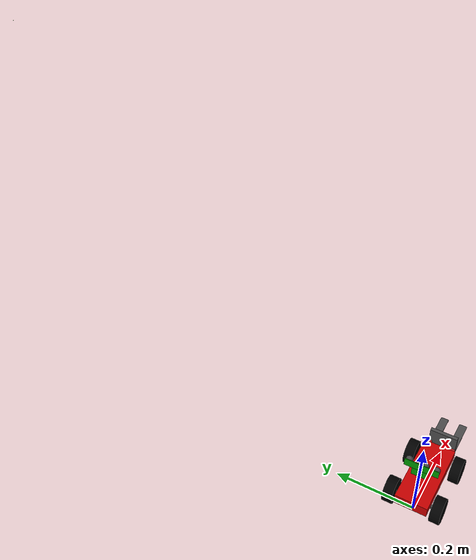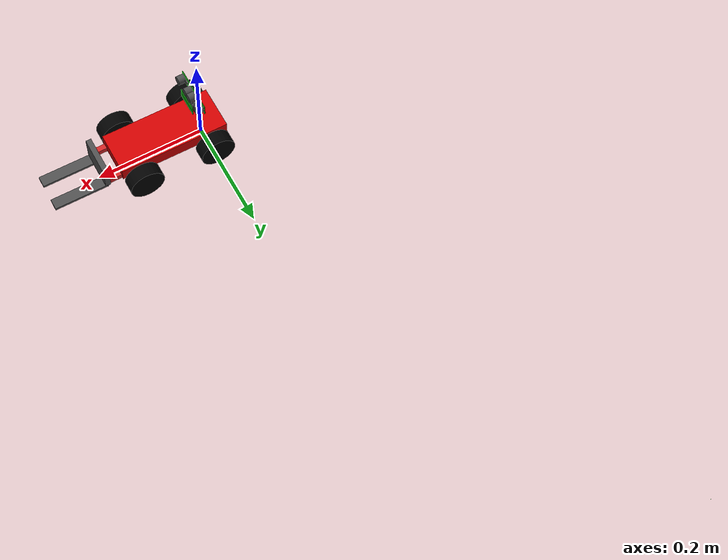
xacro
<?xml version="1.0"?>
<robot xmlns:xacro="http://www.ros.org/wiki/xacro" name="fitzroy">
	<!-- roslaunch urdf_tutorial xacrodisplay.launch model:='$(find fitzroy_description)/urdf/tractorcustom.urdf.xacro' gui:='true'-->

  <xacro:include filename="$(find fitzroy_description)/urdf/fitzroy_common.urdf.xacro"/>

  <!-- The fake GPS needs an origin, it's an arg so it can be changed based on the world used. -->
  <!-- This is the origin of the gazebo world, NOT the place the robot is first dropped into. -->
  <xacro:arg name="latitude" default="0.0" />
  <xacro:arg name="longitude" default="0.0" />

  <xacro:arg name="use_velodyne" default="false" />

	<!-- Front Loader Properties-->
	<xacro:property name="framewidth" value="0.07" />
	<xacro:property name="frameheight" value="0.05" />
	<xacro:property name="thickness" value="0.01" />
	<xacro:property name="armsize" value="0.01" />
	<xacro:property name="armlen" value="0.10" />
	<xacro:property name="forkwidth" value="0.02" />
	<xacro:property name="forkheight" value="0.005" />
	<xacro:property name="forklen" value="0.1" />
	<xacro:property name="forksep" value="0.05" />
	<xacro:property name="basedepth" value="0.04" />
	<xacro:property name="liftmin" value="-0.5" />
	<xacro:property name="liftmax" value="0.5" />
	<xacro:property name="arm_x" value="0.028" />
	<xacro:property name="arm_z" value="-0.010" />
	<xacro:property name="frame_x" value="0.010" />
	<xacro:property name="frame_z" value="0.010" />

	<!-- chasis properties -->
	<xacro:property name="chasiswidth" value="0.080" />
	<xacro:property name="chasisheight" value="0.025" />
	<xacro:property name="chasislength" value="0.202" />
	<xacro:property name="chasismass" value="0.25"/>
	<!-- Backrack on tractor that Reed made-->
	<xacro:property name="rackheight" value="0.09" />
	<xacro:property name="rackback" value="-0.015" />

	<!-- Wheel properties-->
	<xacro:property name="rearwheeldia" value="0.064" />
	<xacro:property name="rearwheelwidth" value="0.025" />
	<xacro:property name="frontwheeldia" value="0.064" />
	<xacro:property name="frontwheelwidth" value="0.025" />
	<xacro:property name="wheelmass" value=".050"/>
	<xacro:property name="rearwheelsep" value="0.117"/>
	<xacro:property name="frontwheelsep" value="0.117"/>
	<xacro:property name="wheelbase" value="0.137"/>
	<xacro:property name="axlesize" value="0.007"/>
	<xacro:property name="turnmin" value="${-pi/4}" />
	<xacro:property name="turnmax" value="${pi/4}" />

	<!-- Wheel Friction -->
	<xacro:property name="wheelfriction1" value="2.0"/>
	<xacro:property name="wheelfriction2" value="2.0"/>
	<xacro:property name="wheelcontactstiffness" value="1000000.0"/>
	<xacro:property name="wheelcontactdamping" value="1.0"/>

	<!-- Wheel offsets-->
	<xacro:property name="front_shock_offset" value="0"/>
  <xacro:property name="rear_shock_offset" value="0"/>

	<!-- Motor properties (steer) -->
	<xacro:property name="steer_eff_limit" value="10000.0"/>
  <xacro:property name="steer_vel_limit" value="10.0"/>
	<xacro:property name="propel_eff_limit" value="100000.0"/>
  <xacro:property name="propel_vel_limit" value="50.0"/>

	<!-- base footprint to make everything work better -->
  <link name="base_footprint">
  </link>

	<!-- base link for whole car ${wheelbase/2} -->
  <link name="base_link">
  </link>
	<joint name="base_footprint_to_base_link" type="fixed">
    <parent link="base_footprint"/>
    <child link="base_link"/>
    <origin xyz="0 0 ${rearwheeldia/2} "/>
  </joint>

	<!-- main chasis -->
	<xacro:cube_plastic
      name="chassis"
      dimx="${chasislength}"
      dimy="${chasiswidth}"
      dimz="${chasisheight}" />
	<joint name="base_link_to_chasis" type="fixed">
    <parent link="base_link"/>
    <child link="chassis"/>
    <origin xyz="${wheelbase/2} 0 ${rear_shock_offset + chasisheight/2}"/>
  </joint>

	<!-- rear axle -->
	<xacro:cube_aluminum
      name="rear_axle"
      dimx="${axlesize}"
      dimy="${rearwheelsep-rearwheelwidth}"
      dimz="${axlesize}" />
	<joint name="base_link_to_rear_axle" type="fixed">
    <parent link="base_link"/>
    <child link="rear_axle"/>
    <origin xyz="0 0 0"/>
  </joint>

	<!-- right rear wheel -->
  <link name="right_rear_wheel">
    <visual>
      <geometry>
        <cylinder length="${rearwheelwidth}" radius="${rearwheeldia/2}"/>
      </geometry>
			<origin rpy="${pi/2} 0 0" xyz="0 0 0 "/>
			<material name="black"/>
    </visual>
		<collision>
			<geometry>
				<cylinder length="${rearwheelwidth}" radius="${rearwheeldia/2}"/>
			</geometry>
			<origin rpy="${pi/2} 0 0" xyz="0 0 0 "/>
		</collision>
		<xacro:cylinder_inertial
          rad="${rearwheeldia / 2}"
					height="${rearwheelwidth}" mass="${wheelmass}"/>
  </link>
	<gazebo reference="right_rear_wheel">
		<mu1 value="${wheelfriction1}"/>
		<mu2 value="${wheelfriction2}"/>
		<kp value="${wheelcontactstiffness}" />
		<kd value="${wheelcontactdamping}" />
		<material>Gazebo/FlatBlack</material>
	</gazebo>
	<joint name="rear_axle_to_right_wheel" type="continuous">
		<axis xyz="0 1 0"/>
    <parent link="rear_axle"/>
    <child link="right_rear_wheel"/>
    <origin xyz="0 ${-rearwheelsep/2} 0"/>
		<limit effort="${propel_eff_limit}" velocity="${propel_vel_limit}"/>
  </joint>

	<!-- left rear wheel -->
  <link name="left_rear_wheel">
    <visual>
      <geometry>
        <cylinder length="${rearwheelwidth}" radius="${rearwheeldia/2}"/>
      </geometry>
			<origin rpy="${pi/2} 0 0" xyz="0 0 0 "/>
			<material name="black"/>
    </visual>
		<collision>
			<geometry>
				<cylinder length="${rearwheelwidth}" radius="${rearwheeldia/2}"/>
			</geometry>
			<origin rpy="${pi/2} 0 0" xyz="0 0 0 "/>
		</collision>
		<xacro:cylinder_inertial
          rad="${rearwheeldia / 2}"
					height="${rearwheelwidth}" mass="${wheelmass}"/>
  </link>
	<gazebo reference="left_rear_wheel">
		<mu1 value="${wheelfriction1}"/>
		<mu2 value="${wheelfriction2}"/>
		<kp value="${wheelcontactstiffness}" />
		<kd value="${wheelcontactdamping}" />
		<material>Gazebo/FlatBlack</material>
	</gazebo>
	<joint name="rear_axle_to_left_wheel" type="continuous">
		<axis xyz="0 1 0"/>
    <parent link="rear_axle"/>
    <child link="left_rear_wheel"/>
    <origin xyz="0 ${rearwheelsep/2} 0"/>
		<limit effort="${propel_eff_limit}" velocity="${propel_vel_limit}"/>
  </joint>

	<!-- front axle right -->
	<xacro:cube_aluminum
      name="front_axle_right"
      dimx="${axlesize}"
      dimy="${axlesize}"
      dimz="${axlesize}" />
	<joint name="base_link_to_front_axle_right" type="revolute">
		<axis xyz="0 0 1"/>
    <limit effort="${steer_eff_limit}" lower="${turnmin}" upper="${turnmax}" velocity="${steer_vel_limit}"/>
    <parent link="chassis"/>
    <child link="front_axle_right"/>
    <origin xyz="${wheelbase/2} ${-frontwheelsep/2} ${-chasisheight/2 - front_shock_offset} "/>
  </joint>

	<!-- front axle left -->
	<xacro:cube_aluminum
      name="front_axle_left"
      dimx="${axlesize}"
      dimy="${axlesize}"
      dimz="${axlesize}" />
	<joint name="base_link_to_front_axle_left" type="revolute">
		<axis xyz="0 0 1"/>
    <limit effort="${steer_eff_limit}" lower="${turnmin}" upper="${turnmax}" velocity="${steer_vel_limit}"/>
    <parent link="chassis"/>
    <child link="front_axle_left"/>
    <origin xyz="${wheelbase/2} ${frontwheelsep/2} ${-chasisheight/2 - front_shock_offset} "/>
  </joint>

	<!-- right front wheel -->
  <link name="right_front_wheel">
    <visual>
      <geometry>
        <cylinder length="${frontwheelwidth}" radius="${frontwheeldia/2}"/>
      </geometry>
			<origin rpy="${pi/2} 0 0" xyz="0 0 0 "/>
			<material name="black"/>
    </visual>
		<collision>
			<geometry>
				<cylinder length="${frontwheelwidth}" radius="${frontwheeldia/2}"/>
			</geometry>
			<origin rpy="${pi/2} 0 0" xyz="0 0 0 "/>
		</collision>
		<xacro:cylinder_inertial
          rad="${frontwheeldia / 2}"
					height="${frontwheelwidth}" mass="${wheelmass}"/>
  </link>
	<gazebo reference="right_front_wheel">
		<mu1 value="${wheelfriction1}"/>
		<mu2 value="${wheelfriction2}"/>
		<kp value="${wheelcontactstiffness}" />
		<kd value="${wheelcontactdamping}" />
		<material>Gazebo/FlatBlack</material>
	</gazebo>
	<joint name="front_axle_to_right_wheel" type="continuous">
		<axis xyz="0 1 0"/>
    <parent link="front_axle_right"/>
    <child link="right_front_wheel"/>
    <origin xyz="0 0 0"/>
		<limit effort="${propel_eff_limit}" velocity="${propel_vel_limit}"/>
  </joint>

	<!-- left front wheel -->
  <link name="left_front_wheel">
    <visual>
      <geometry>
       <cylinder length="${frontwheelwidth}" radius="${frontwheeldia/2}"/>
      </geometry>
			<origin rpy="${pi/2} 0 0" xyz="0 0 0 "/>
			<material name="black"/>
    </visual>
		<collision>
			<geometry>
				<cylinder length="${frontwheelwidth}" radius="${frontwheeldia/2}"/>
			</geometry>
			<origin rpy="${pi/2} 0 0" xyz="0 0 0 "/>
		</collision>
		<xacro:cylinder_inertial
          rad="${frontwheeldia / 2}"
					height="${frontwheelwidth}" mass="${wheelmass}"/>
  </link>
	<gazebo reference="left_front_wheel">
		<mu1 value="${wheelfriction1}"/>
		<mu2 value="${wheelfriction2}"/>
		<kp value="${wheelcontactstiffness}" />
		<kd value="${wheelcontactdamping}" />
		<material>Gazebo/FlatBlack</material>
	</gazebo>
	<joint name="front_axle_to_left_wheel" type="continuous">
		<axis xyz="0 1 0"/>
    <parent link="front_axle_left"/>
    <child link="left_front_wheel"/>
    <origin xyz="0 0 0"/>
		<limit effort="${propel_eff_limit}" velocity="${propel_vel_limit}"/>
  </joint>

	<!-- START OF LOADER ARM STUFF -->
	<!-- dummy link to hold loader -->

	<!-- left arm -->
  <link name="left_arm">
    <visual>
      <geometry>
        <box size="${armlen} ${armsize} ${armsize}"/>
      </geometry>
      <origin rpy="0 0 0" xyz="${armlen/2 - thickness/2} 0 0"/>
    </visual>
		<collision>
			<geometry>
        <box size="${armlen} ${armsize} ${armsize}"/>
			</geometry>
      <origin rpy="0 0 0" xyz="${armlen/2 - thickness/2} 0 0"/>
		</collision>
		<xacro:default_inertial mass="1"/>
  </link>
	<gazebo reference="left_arm">
		<material>Gazebo/Red</material>
	</gazebo>

	<joint name="back_to_left_arm" type="fixed">
    <parent link="chassis"/>
    <child link="left_arm"/>
    <origin xyz="${arm_x} ${framewidth/2 - armsize/2} ${arm_z}"/>
  </joint>

	<!-- right arm -->
  <link name="right_arm">
    <visual>
      <geometry>
        <box size="${armlen} ${armsize} ${armsize}"/>
      </geometry>
      <origin rpy="0 0 0" xyz="${armlen/2 - thickness/2} 0 0"/>
    </visual>
		<collision>
			<geometry>
        <box size="${armlen} ${armsize} ${armsize}"/>
			</geometry>
      <origin rpy="0 0 0" xyz="${armlen/2 - thickness/2} 0 0"/>
		</collision>
		<xacro:default_inertial mass="1"/>
  </link>
	<gazebo reference="right_arm">
		<material>Gazebo/Red</material>
	</gazebo>

	<joint name="back_to_right_arm" type="fixed">
    <parent link="chassis"/>
    <child link="right_arm"/>
    <origin xyz="${arm_x} ${-framewidth/2 + armsize/2} ${arm_z}"/>
    <mimic  joint="back_to_left_arm" multiplier="1" offset="0"/>
  </joint>

	<!-- START OF FORK ASSEMBLY -->
	<!-- We use separate links for each part to have accurate physics properties -->

	<!-- fork assembly -->
  <link name="fork_assembly">
  </link>

	<!-- lift front wall with arm -->
	<joint name="left_arm_to_fork_assembly" type="fixed">
    <parent link="left_arm"/>
    <child link="fork_assembly"/>
    <origin xyz="${armlen-thickness} ${-framewidth/2 + armsize/2} 0"/>
  </joint>

	<!-- backstop -->
	<xacro:cube_aluminum
      name="fork_backstop"
      dimx="${frameheight}"
      dimy="${framewidth}"
      dimz="${thickness}" />
	<joint name="fork_assembly_to_fork_backstop" type="fixed">
    <parent link="fork_assembly"/>
    <child link="fork_backstop"/>
		<origin rpy="0 ${pi/2} 0" xyz="${frame_x} 0 ${chasisheight-frame_z} "/>
  </joint>
	<!-- left fork -->
	<xacro:cube_aluminum
      name="left_fork"
      dimx="${forkheight}"
      dimy="${forkwidth}"
      dimz="${forklen}" />
	<joint name="fork_assembly_to_left_fork" type="fixed">
    <parent link="fork_assembly"/>
    <child link="left_fork"/>
    <origin rpy="0 ${pi/2} 0" xyz="${frame_x+forklen/2} ${ forksep/2} ${chasisheight-frame_z-frameheight/2} "/>
  </joint>
	<!-- right fork -->
	<xacro:cube_aluminum
      name="right_fork"
      dimx="${forkheight}"
      dimy="${forkwidth}"
      dimz="${forklen}" />
	<joint name="fork_assembly_to_right_fork" type="fixed">
    <parent link="fork_assembly"/>
    <child link="right_fork"/>
    <origin rpy="0 ${pi/2} 0" xyz="${frame_x+forklen/2} ${-forksep/2} ${chasisheight-frame_z-frameheight/2} "/>
  </joint>

	<!-- START OF THE TRANSMISSIONS STUFF (NECCESARY TO USE MOTOR CONTROL IN GAZEBO) -->
	<!-- Steering Transmissions -->
	<transmission name="right_steer_trans">
    <type>transmission_interface/SimpleTransmission</type>
    <actuator name="right_steer_motor">
      <mechanicalReduction>1</mechanicalReduction>
    </actuator>
    <joint name="base_link_to_front_axle_right">
      <hardwareInterface>hardware_interface/EffortJointInterface</hardwareInterface>
    </joint>
  </transmission>
	<transmission name="left_steer_trans">
    <type>transmission_interface/SimpleTransmission</type>
    <actuator name="left_steer_motor">
      <mechanicalReduction>1</mechanicalReduction>
    </actuator>
    <joint name="base_link_to_front_axle_left">
      <hardwareInterface>hardware_interface/EffortJointInterface</hardwareInterface>
    </joint>
  </transmission>

	<!-- Wheel transmissions -->
	<transmission name="right_front_wheel_trans">
    <type>transmission_interface/SimpleTransmission</type>
    <actuator name="right_front_wheel_motor">
      <mechanicalReduction>1</mechanicalReduction>
    </actuator>
    <joint name="front_axle_to_right_wheel">
      <hardwareInterface>hardware_interface/EffortJointInterface</hardwareInterface>
    </joint>
  </transmission>
	<transmission name="right_rear_wheel_trans">
    <type>transmission_interface/SimpleTransmission</type>
    <actuator name="right_rear_wheel_motor">
      <mechanicalReduction>1</mechanicalReduction>
    </actuator>
    <joint name="rear_axle_to_right_wheel">
      <hardwareInterface>hardware_interface/EffortJointInterface</hardwareInterface>
    </joint>
  </transmission>
	<transmission name="left_front_wheel_trans">
    <type>transmission_interface/SimpleTransmission</type>
    <actuator name="left_front_wheel_motor">
      <mechanicalReduction>1</mechanicalReduction>
    </actuator>
    <joint name="front_axle_to_left_wheel">
      <hardwareInterface>hardware_interface/EffortJointInterface</hardwareInterface>
    </joint>
  </transmission>
	<transmission name="left_rear_wheel_trans">
    <type>transmission_interface/SimpleTransmission</type>
    <actuator name="left_rear_wheel_motor">
      <mechanicalReduction>1</mechanicalReduction>
    </actuator>
    <joint name="rear_axle_to_left_wheel">
      <hardwareInterface>hardware_interface/EffortJointInterface</hardwareInterface>
    </joint>
  </transmission>

	<!-- Specify Plugin for Gazebo-->
	<gazebo>
    <plugin name="gazebo_ros_control" filename="libgazebo_ros_control.so">
      <robotNamespace>/</robotNamespace>
      <robotSimType>gazebo_ros_control/DefaultRobotHWSim</robotSimType>
      <legacyModeNS>true</legacyModeNS>
    </plugin>

	<!-- Provide pose as an odom topic -->
    <plugin name="p3d_base_controller" filename="libgazebo_ros_p3d.so">
      <alwaysOn>true</alwaysOn>
      <updateRate>50.0</updateRate>
      <bodyName>base_link</bodyName>
      <topicName>/ground_truth</topicName>
      <gaussianNoise>0.0</gaussianNoise>
      <frameName>world</frameName>
      <xyzOffsets>0 0 0</xyzOffsets>
      <rpyOffsets>0 0 0</rpyOffsets>
    </plugin>

  </gazebo>

	<!-- Setup a fake gps sensor -->
	<joint name="gps_joint" type="fixed">
    <parent link="base_link"/>
    <child link="gps_link"/>
  </joint>
	<link name="gps_link">
	</link>
	<gazebo>
		<plugin name="novatel_gps_sim" filename="libnorthstar_gazebo_ros_gps.so">
		  <alwaysOn>1</alwaysOn>
		  <updateRate>10.0</updateRate>
		  <bodyName>gps_link</bodyName>
			<frameId>gps_link</frameId> <!-- 'frameId' not 'frameName'-->
		  <topicName>gps/fix</topicName>
		  <velocityTopicName>gps/fix_velocity</velocityTopicName>
		  <drift>0 0 0</drift>
		  <gaussianNoise>0.04 0.04 0.1</gaussianNoise>
		  <velocityDrift>0 0 0</velocityDrift>
		  <velocityGaussianNoise>0.1 0.1 0.1</velocityGaussianNoise>
			<!-- Here we set the initial GPS location (Nordborg, DN)  default is in hamburg, germany-->
			<referenceLatitude>$(arg latitude)</referenceLatitude>
			<referenceLongitude>$(arg longitude)</referenceLongitude>
		</plugin>
	</gazebo>

	<!-- Setup a fake IMU sensor -->
  <joint name="imu_joint" type="fixed">
    <parent link="base_link"/>
    <child link="fitzroy_imu"/>
  </joint>
	<link name="fitzroy_imu">
	</link>
	<gazebo>
		<!-- Old IMU plugin messes with frame_id: dont use libgazebo_ros_imu.so-->
    <plugin name="imu_plugin" filename="libhector_gazebo_ros_imu.so">
        <alwaysOn>true</alwaysOn>
        <bodyName>fitzroy_imu</bodyName>
				<frameId>fitzroy_imu</frameId> <!-- 'frameId' not 'frameName'-->
        <topicName>imu/data</topicName>
        <serviceName>imu/service</serviceName>
        <gaussianNoise>0.001</gaussianNoise>
        <updateRate>50.0</updateRate>
    </plugin>
	</gazebo>

	<!-- Camera -->
  <xacro:include filename="$(find fitzroy_description)/urdf/picam.urdf.xacro"/>
  <picam parent="chassis" name="camera">
    <origin xyz="${-(wheelbase/2 + rackback)} 0 ${rackheight}" rpy="0 0 0"/>
  </picam>

	<!-- Ultrasonic -->
  <xacro:include filename="$(find fitzroy_description)/urdf/ultrasonic_sensor.urdf.xacro"/>
  <ultrasonic_sensor parent="chassis" name="fitzroy_us1">
    <origin xyz="${-(wheelbase/2 + rackback)} 0.020 ${rackheight}" rpy="0 0 0"/>
  </ultrasonic_sensor>
	<!-- Ultrasonic -->
  <xacro:include filename="$(find fitzroy_description)/urdf/ultrasonic_sensor.urdf.xacro"/>
  <ultrasonic_sensor parent="chassis" name="fitzroy_us2">
    <origin xyz="${-(wheelbase/2 + rackback)} -0.020 ${rackheight}" rpy="0 0 0"/>
  </ultrasonic_sensor>
	<!-- TOF Rev -->
  <xacro:include filename="$(find fitzroy_description)/urdf/ultrasonic_sensor.urdf.xacro"/>
  <ultrasonic_sensor parent="chassis" name="fitzroy_tof1">
    <origin xyz="${-(wheelbase/2 + rackback)} 0 ${rackheight - 0.02}" rpy="0 0 ${pi}"/>
  </ultrasonic_sensor>
	<!-- TOF Fwd -->
  <xacro:include filename="$(find fitzroy_description)/urdf/ultrasonic_sensor.urdf.xacro"/>
  <ultrasonic_sensor parent="chassis" name="fitzroy_tof2">
    <origin xyz="${-(wheelbase/2 + rackback)} 0 ${rackheight - 0.02}" rpy="0 0 0"/>
  </ultrasonic_sensor>

</robot>

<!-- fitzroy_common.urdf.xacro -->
<robot xmlns:xacro="http://www.ros.org/wiki/xacro" name="fitzroy_common">
	<!-- roslaunch urdf_tutorial xacrodisplay.launch model:='$(find fitzroy_description)/urdf/tractorcustom.urdf.xacro' gui:='true'-->

	<!-- Each link is a physical element, the visual tag is required -->
	<!-- Each link also has a collision and inertial element which define interactions -->
	<xacro:property name="pi" value="3.14159265358" />

	<!-- default initializer for inertia -->
	<xacro:macro name="default_inertial" params="mass">
		<inertial>
      			<mass value="${mass}" />
		        <inertia ixx="1.0" ixy="0.0" ixz="0.0"
			         iyy="1.0" iyz="0.0"
			         izz="1.0" />
		</inertial>
	</xacro:macro>

	<!-- macro for computing the inertia tensor for cubes-->
	<!-- https://en.wikipedia.org/wiki/List_of_moments_of_inertia -->
	<xacro:macro name="cube_inertial"
               params="dimx dimy dimz mass">
    <inertial>
      <mass value="${mass}"/>
      <inertia ixx="${(1/12)*mass*(dimy*dimy + dimz*dimz)}"
               ixy="0" ixz="0"
               iyy="${(1/12)*mass*(dimx*dimx + dimz*dimz)}"
               iyz="0"
               izz="${(1/12)*mass*(dimx*dimx + dimy*dimy)}"/>
    </inertial>
  </xacro:macro>

	<!-- macro for computing inertia tensor for a cylinder-->
	<!-- http://scienceworld.wolfram.com/physics/MomentofInertiaCylinder.html -->
	<xacro:macro name="cylinder_inertial"
               params="rad height mass">
    <inertial>
      <mass value="${mass}"/>
      <inertia ixx="${(1/12)*mass*(height*height) + (1 / 4)*mass*(rad*rad) }"
               ixy="0" ixz="0"
               iyy="${(1/2)* mass * (rad*rad)}"
               iyz="0"
               izz="${(1/12)*mass*(height*height) + (1 / 4)*mass*(rad*rad) }"/>
    </inertial>
  </xacro:macro>

	<!-- Setup some colors -->
	<!-- List of materials: http://wiki.ros.org/simulator_gazebo/Tutorials/ListOfMaterials-->
	<material name="blue">
		<color rgba="0 0 0.8 1"/>
	</material>
	<material name="red">
		<color rgba="0.8 0 0 1"/>
	</material>
	<material name="hideaxle">
		<color rgba="1 1 1 1"/>
	</material>
	<material name="white">
		<color rgba="1 1 1 1"/>
	</material>
	<material name="black">
		<color rgba="0 0 0 1"/>
	</material>
	<material name="grey">
		<color rgba="0.3 0.3 0.3 1"/>
	</material>
	<material name="green">
		<color rgba="0 0.6 0 1"/>
	</material>

	<!-- macro for creating an aluminum cube -->
	<xacro:macro name="cube_aluminum"
               params="name dimx dimy dimz density:=2700">
    <xacro:property name="mass" value="${density*dimx*dimy*dimz}"/>
    <link name="${name}">
      <visual>
        <geometry>
          <box size="${dimx} ${dimy} ${dimz}"/>
        </geometry>
			  <origin rpy="0 0 0" xyz="0 0 0"/>
			  <material name="grey"/>
      </visual>
		  <collision>
        <geometry>
          <box size="${dimx} ${dimy} ${dimz}"/>
        </geometry>
			  <origin rpy="0 0 0" xyz="0 0 0"/>
		  </collision>
      <cube_inertial dimx="${dimx}" dimy="${dimy}" dimz="${dimz}" mass="${mass}" />
    </link>
	  <gazebo reference="${name}">
		  <material>Gazebo/Grey</material>
	  </gazebo>
  </xacro:macro>

	<!-- macro for creating a plastic cube -->
	<xacro:macro name="cube_plastic"
               params="name dimx dimy dimz density:=1000">
    <xacro:property name="mass" value="${density*dimx*dimy*dimz}"/>
    <link name="${name}">
      <visual>
        <geometry>
          <box size="${dimx} ${dimy} ${dimz}"/>
        </geometry>
			  <origin rpy="0 0 0" xyz="0 0 0"/>
			  <material name="red"/>
      </visual>
		  <collision>
        <geometry>
          <box size="${dimx} ${dimy} ${dimz}"/>
        </geometry>
			  <origin rpy="0 0 0" xyz="0 0 0"/>
		  </collision>
      <cube_inertial dimx="${dimx}" dimy="${dimy}" dimz="${dimz}" mass="${mass}" />
    </link>
	  <gazebo reference="${name}">
		  <material>Gazebo/Red</material>
	  </gazebo>
  </xacro:macro>

</robot>

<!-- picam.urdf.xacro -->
<robot xmlns:xacro="http://www.ros.org/wiki/xacro" name="picam">
  <xacro:property name="M_PI" value="3.1415926535897931" />
  <xacro:property name="picam_width" value="0.025" />
  <xacro:property name="picam_height" value="0.024" />
  <xacro:property name="picam_thickness" value="0.009" />
  <xacro:property name="picam_hfov" value="${53.50*M_PI/180}" />

	<!-- Simple Raspberry Pi Camera -->
  <xacro:macro name="picam" params="*origin parent:=base_link name:=camera ">

	<joint name="${name}_joint" type="fixed">
    <xacro:insert_block name="origin" />
    <parent link="${parent}"/>
    <child link="${name}_link"/>
  </joint>
	<link name="${name}_link">
    <collision>
      <geometry>
    	  <box size="${picam_thickness} ${picam_width} ${picam_height} "/>
      </geometry>
    </collision>
    <visual>
      <geometry>
        <mesh filename="package://fitzroy_description/meshes/picam.dae" scale="0.0254 0.0254 0.0254"/>
      </geometry>
      <!-- These offsets are specific to the dae file, and were found experimentally ${-1.128+0.01025} ${-0.874-0.00126} -0.003 -->
      <origin xyz="-0.003 1.11775 0.87526" rpy="${-M_PI/2} 0 ${-M_PI/2}"/>
    </visual>
    <inertial>
      <mass value="1e-5" />
      <origin xyz="0 0 0" rpy="0 0 0"/>
      <inertia ixx="1e-6" ixy="0" ixz="0" iyy="1e-6" iyz="0" izz="1e-6" />
    </inertial>
  </link>
  <joint name="${name}_optical_joint" type="fixed">
    <!-- these values have to be these values otherwise the gazebo camera
        image won't be aligned properly with the frame it is supposedly
        originating from -->
    <origin xyz="0 0 0" rpy="${-M_PI/2} 0 ${-M_PI/2}"/>
    <parent link="${name}_link"/>
    <child link="${name}_link_optical"/>
  </joint>

  <link name="${name}_link_optical">
  </link>
  <gazebo reference="${name}_link">
    <sensor type="camera" name="${name}">
      <update_rate>30.0</update_rate>
      <camera name="head">
        <horizontal_fov>${picam_hfov}</horizontal_fov>
        <image>
          <width>640</width>
          <height>480</height>
          <format>R8G8B8</format>
        </image>
        <clip>
          <near>0.02</near>
          <far>1000</far>
        </clip>
        <noise>
          <type>gaussian</type>
          <!-- Noise is sampled independently per pixel on each frame.
               That pixel's noise value is added to each of its color
               channels, which at that point lie in the range [0,1]. -->
          <mean>0.0</mean>
          <stddev>0.007</stddev>
        </noise>
      </camera>
      <plugin name="camera_controller" filename="libgazebo_ros_camera.so">
        <alwaysOn>true</alwaysOn>
        <updateRate>0.0</updateRate>
        <cameraName>${name}</cameraName>
        <imageTopicName>image_raw</imageTopicName>
        <cameraInfoTopicName>camera_info</cameraInfoTopicName>
        <frameName>${name}_link_optical</frameName>
        <hackBaseline>0.07</hackBaseline>
        <distortionK1>0.0</distortionK1>
        <distortionK2>0.0</distortionK2>
        <distortionK3>0.0</distortionK3>
        <distortionT1>0.0</distortionT1>
        <distortionT2>0.0</distortionT2>
      </plugin>
    </sensor>
  </gazebo>

  </xacro:macro>
</robot>

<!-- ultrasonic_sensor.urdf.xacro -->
<robot xmlns:xacro="http://www.ros.org/wiki/xacro">

  <xacro:macro name="ultrasonic_sensor" params="name parent *origin ros_topic:=ultrasonic_sensor update_rate:=15 min_range:=0.02 max_range:=4.0 field_of_view:=0.2617993878 ray_count:=10 resolution:=0.001 gaussian_noise:=0.010">
    <xacro:property name="dimx" value="0.015"/>
    <xacro:property name="dimy" value="0.043"/>
    <xacro:property name="dimz" value="0.020"/>
    <xacro:property name="mass" value="0.020"/>
    <xacro:property name="pcb_thickness" value="0.00157"/>
    <xacro:property name="speaker_spacing" value="0.027"/>
    <xacro:property name="speaker_diameter" value="0.016"/>

		<material name="${name}_pcb_color">
			<color rgba="0 0.6 0 1"/>
		</material>
		<material name="${name}_speaker_color">
			<color rgba="0.3 0.3 0.3 1"/>
		</material>

    <joint name="${name}_joint" type="fixed">
      <xacro:insert_block name="origin" />
      <parent link="${parent}"/>
      <child link="${name}"/>
    </joint>

    <link name="${name}">
      <visual>
        <origin xyz="${-dimx/2 + pcb_thickness/2} 0 0" rpy="0 0 0" />
        <geometry>
          <box size="${pcb_thickness} ${dimy} ${dimz}" />
        </geometry>
			  <material name="${name}_pcb_color"/>
      </visual>
      <collision>
        <origin xyz="0 0 0" rpy="0 0 0" />
        <geometry>
          <box size="${dimx} ${dimy} ${dimz}" />
        </geometry>
      </collision>
      <inertial>
        <mass value="${mass}"/>
        <inertia ixx="${(1/12)*mass*(dimy*dimy + dimz*dimz)}"
                 ixy="0" ixz="0"
                 iyy="${(1/12)*mass*(dimx*dimx + dimz*dimz)}"
                 iyz="0"
                 izz="${(1/12)*mass*(dimx*dimx + dimy*dimy)}"/>
      </inertial>
    </link>

    <!-- This could/should be done with multiple visual tags in the link, but that's broken in rviz:
         https://answers.ros.org/question/154816/color-issue-with-urdf-and-multiple-visual-tags/ -->
    <joint name="${name}_speakers_joint" type="fixed">
      <parent link="${name}"/>
      <child link="${name}_speakers_link"/>
    </joint>

    <link name="${name}_speakers_link">
      <visual>
        <origin xyz="0 ${speaker_spacing/2} 0" rpy="0 1.57079632679 0" />
        <geometry>
          <!-- 0.99 to avoid Z fighting -->
          <cylinder length="${dimx*0.99}" radius="${speaker_diameter/2}"/>
        </geometry>
			  <material name="${name}_speaker_color"/>
      </visual>
      <visual>
        <origin xyz="0 ${-speaker_spacing/2} 0" rpy="0 1.57079632679 0" />
        <geometry>
          <!-- 0.99 to avoid Z fighting -->
          <cylinder length="${dimx*0.99}" radius="${speaker_diameter/2}"/>
        </geometry>
			  <material name="${name}_speaker_color"/>
      </visual>
      <visual>
        <origin xyz="${-dimx/2 + pcb_thickness*2} 0 ${dimz * 0.3}" rpy="0 0 0" />
        <geometry>
          <box size="${pcb_thickness*2} ${pcb_thickness*5} ${pcb_thickness*2}" />
        </geometry>
			  <material name="${name}_speaker_color"/>
      </visual>
    </link>

    <gazebo reference="${name}">
      <sensor type="ray" name="${name}">
        <always_on>true</always_on>
        <update_rate>${update_rate}</update_rate>
        <pose>0 0 0 0 0 0</pose>
        <visualize>true</visualize>
        <ray>
          <scan>
            <horizontal>
              <samples>${ray_count}</samples>
              <resolution>1</resolution>
              <min_angle>-${field_of_view/2}</min_angle>
              <max_angle> ${field_of_view/2}</max_angle>
            </horizontal>
            <vertical>
              <samples>${ray_count}</samples>
              <resolution>1</resolution>
              <min_angle>-${field_of_view/2}</min_angle>
              <max_angle> ${field_of_view/2}</max_angle>
            </vertical>
          </scan>
          <range>
            <min>${min_range}</min>
            <max>${max_range}</max>
            <resolution>${resolution}</resolution>
          </range>
        </ray>

        <plugin name="gazebo_ros_${name}_controller" filename="libhector_gazebo_ros_sonar.so">
          <gaussianNoise>${gaussian_noise}</gaussianNoise>
          <topicName>${ros_topic}</topicName>
          <frameId>${name}</frameId>
        </plugin>
      </sensor>
    </gazebo>
  </xacro:macro>
</robot>
